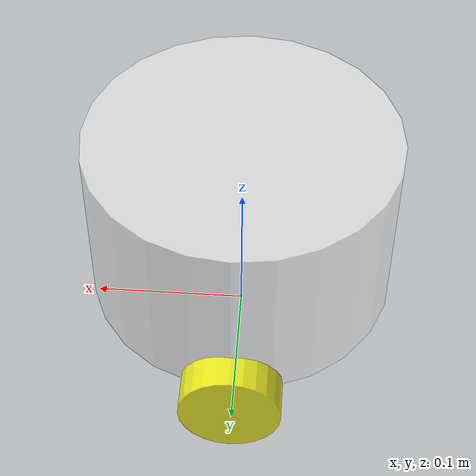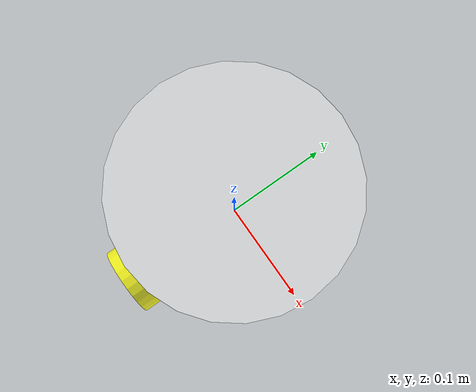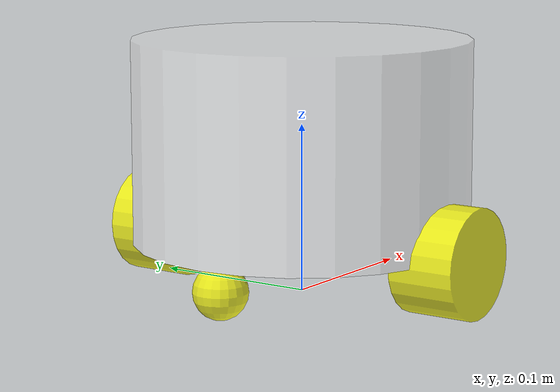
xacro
<?xml version="1.0"?>
<robot xmlns:xacro="http://www.ros.org/wiki/xacro" name="fishbot">v
<!-- 基础部分 base_link -->
<xacro:include filename="base.urdf.xacro"/>
<!--执行器部分-->
<xacro:include filename="wheel.urdf.xacro"/>
<xacro:include filename="caster.urdf.xacro"/>

<xacro:base_xacro length="0.12" radius="0.10"/>

<xacro:wheel_xacro wheel_name="left_wheel" xyz="0 0.10 -0.06"/>
<xacro:wheel_xacro wheel_name="right_wheel" xyz="0 -0.10 -0.06"/>
<xacro:caster_xacro caster_name="front_caster" xyz="0.08 0.0 -0.076"/>
<xacro:caster_xacro caster_name="back_caster" xyz="-0.08 0.0 -0.076"/>

</robot>

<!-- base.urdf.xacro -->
<robot xmlns:xacro="http://www.ros.org/wiki/xacro">
  <xacro:include filename="common_inertial.xacro" />
  <xacro:macro name="base_xacro" params="length radius">
    <link name="base_footprint" />

    <!-- 机器人身体部分 -->
    <link name="base_link">
      <!--部件外观描述-->
      <visual>
        <!--沿着自己几何中心的偏移和旋转-->
        <origin xyz="0 0 0" rpy="0 0 0"/>
        <!--几何形状-->
        <geometry>
          <!--圆柱体 radius 半径 0.10m 高度 length 0.12m-->
          <cylinder radius="${radius}" length="${length}"/>
        </geometry>
        <!--材质-->
        <material name="white">
          <color rgba="1.0 1.0 1.0 0.5"/>
        </material>
      </visual>

      <collision>
        <!--沿着自己几何中心的偏移和旋转-->
        <origin xyz="0 0 0" rpy="0 0 0"/>
        <!--几何形状-->
        <geometry>
          <!--圆柱体 radius 半径 0.10m 高度 length 0.12m-->
          <cylinder radius="${radius}" length="${length}"/>
        </geometry>
        <!--材质-->
        <material name="white">
          <color rgba="1.0 1.0 1.0 0.5"/>
        </material>
      </collision>

      <xacro:cylinder_inertia m="1.0" r="${radius}" h="${length}" />

    </link>

    <joint name="joint_name" type="fixed">
      <!--关节连接的部件-->
      <parent link="base_footprint"/>
      <child link="base_link"/>
      <!--关节的偏移和旋转-->
      <origin xyz="0 0 ${length/2.0+0.032-0.001}" rpy="0 0 0"/>
    </joint>

  </xacro:macro>

</robot>

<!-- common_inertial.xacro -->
<robot xmlns:xacro="http://ros.org/wiki/xacro">
    <xacro:macro name="box_inertia" params="m w h d">
        <inertial>
            <mass value="${m}" />
            <inertia ixx="${(m/12) * (h*h + d*d)}" ixy="0.0" ixz="0.0" iyy="${(m/12) * (w*w + d*d)}" iyz="0.0" izz="${(m/12) * (w*w + h*h)}" />
        </inertial>
    </xacro:macro>

    <xacro:macro name="cylinder_inertia" params="m r h">
        <inertial>
            <mass value="${m}" />
            <inertia ixx="${(m/12) * (3*r*r + h*h)}" ixy="0" ixz="0" iyy="${(m/12) * (3*r*r + h*h)}" iyz="0" izz="${(m/2) * (r*r)}" />
        </inertial>
    </xacro:macro>

    <xacro:macro name="sphere_inertia" params="m r">
        <inertial>
            <mass value="${m}" />
            <inertia ixx="${(2/5) * m * (r*r)}" ixy="0.0" ixz="0.0" iyy="${(2/5) * m * (r*r)}" iyz="0.0" izz="${(2/5) * m * (r*r)}" />
        </inertial>
    </xacro:macro>

</robot>

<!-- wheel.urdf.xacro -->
<robot xmlns:xacro="http://www.ros.org/wiki/xacro">
  <xacro:include filename="common_inertial.xacro" />
  <xacro:macro name="wheel_xacro" params="wheel_name xyz">
    <!-- 机器人IMU部件，惯性测量传感器 -->
    <link name="${wheel_name}_link">
      <!--部件外观描述-->
      <visual>
        <!--沿着自己几何中心的偏移和旋转-->
        <origin xyz="0 0 0" rpy="1.57079 0 0"/>
        <!--几何形状-->
        <geometry>
          <cylinder radius="0.032" length="0.04"/>
        </geometry>
        <!--材质-->
        <material name="yellow">
          <color rgba="1.0 1.0 0.0 0.8"/>
        </material>
      </visual>

      <collision>
        <!--沿着自己几何中心的偏移和旋转-->
        <origin xyz="0 0 0" rpy="1.57079 0 0"/>
        <!--几何形状-->
        <geometry>
          <cylinder radius="0.032" length="0.04"/>
        </geometry>
        <!--材质-->
        <material name="yellow">
          <color rgba="1.0 1.0 0.0 0.8"/>
        </material>
      </collision>
      <xacro:cylinder_inertia m="0.05" r="0.032" h="0.04" />
    </link>

    <!--机器人关节，用于组合机器人的部分-->
    <joint name="${wheel_name}_joint" type="continuous">
      <!--关节连接的部件-->
      <parent link="base_link"/>
      <child link="${wheel_name}_link"/>
      <!--关节的偏移和旋转-->
      <origin xyz="${xyz}" rpy="0 0 0"/>
      <axis xyz="0.0 1.0 0.0"/>
    </joint>

    <gazebo reference="${wheel_name}_link">
      <mu1 value="20.0"/>
      <mu2 value="20.0"/>
      <kp value="1000000000.0"/>
      <kd value="1.0"/>
    </gazebo>
  </xacro:macro>
</robot>

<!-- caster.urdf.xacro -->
<robot xmlns:xacro="http://www.ros.org/wiki/xacro">
  <xacro:include filename="common_inertial.xacro" />
  <xacro:macro name="caster_xacro" params="caster_name xyz">
    <!-- 机器人IMU部件，惯性测量传感器 -->
    <link name="${caster_name}_link">
      <!--部件外观描述-->
      <visual>
        <!--沿着自己几何中心的偏移和旋转-->
        <origin xyz="0 0 0" rpy="0 0 0"/>
        <!--几何形状-->
        <geometry>
          <sphere radius="0.016"/>
        </geometry>
        <!--材质-->
        <material name="yellow">
          <color rgba="1.0 1.0 0.0 0.8"/>
        </material>
      </visual>
      <collision>
        <!--沿着自己几何中心的偏移和旋转-->
        <origin xyz="0 0 0" rpy="0 0 0"/>
        <!--几何形状-->
        <geometry>
          <sphere radius="0.016"/>
        </geometry>
        <!--材质-->
        <material name="yellow">
          <color rgba="1.0 1.0 0.0 0.8"/>
        </material>
      </collision>
      <xacro:sphere_inertia m="0.05" r="0.016"/>
    </link>

    <!--机器人关节，用于组合机器人的部分-->
    <joint name="${caster_name}_joint" type="fixed">
      <!--关节连接的部件-->
      <parent link="base_link"/>
      <child link="${caster_name}_link"/>
      <!--关节的偏移和旋转-->
      <origin xyz="${xyz}" rpy="0 0 0"/>
    </joint>

    <gazebo reference="${caster_name}_link">
      <mu1 value="0.0"/>
      <mu2 value="0.0"/>
      <kp value="1000000000.0"/>
      <kd value="1.0"/>
    </gazebo>
  </xacro:macro>
</robot>
